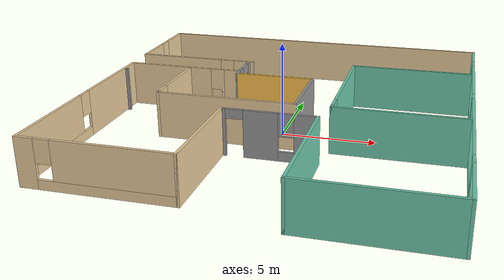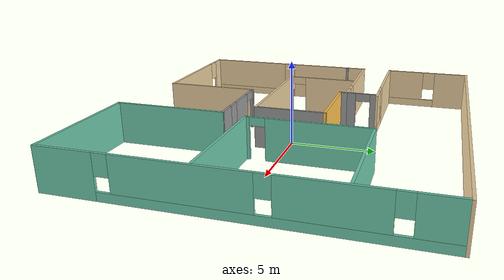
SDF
<?xml version='1.0'?>
<sdf version='1.6'>
  <model name='my_new_world.world'>
    <pose frame=''>-0.097438 0.021608 0 0 -0 0</pose>
    <link name='Wall_10'>
      <pose frame=''>-9.8 7.25 0 0 0 -1.5708</pose>
      <visual name='Wall_10_Visual_0'>
        <pose frame=''>-1.64644 0 1.25 0 -0 0</pose>
        <geometry>
          <box>
            <size>2.20712 0.15 2.5</size>
          </box>
        </geometry>
        <material>
          <script>
            <uri>file://media/materials/scripts/gazebo.material</uri>
            <name>Gazebo/Grey</name>
          </script>
          <ambient>0.921569 0.807843 0.615686 1</ambient>
        </material>
        <meta>
          <layer>0</layer>
        </meta>
      </visual>
      <collision name='Wall_10_Collision_0'>
        <geometry>
          <box>
            <size>2.20712 0.15 2.5</size>
          </box>
        </geometry>
        <pose frame=''>-1.64644 0 1.25 0 -0 0</pose>
      </collision>
      <visual name='Wall_10_Visual_1'>
        <pose frame=''>1.10356 0 0.25 0 -0 0</pose>
        <geometry>
          <box>
            <size>3.29288 0.15 0.5</size>
          </box>
        </geometry>
        <material>
          <script>
            <uri>file://media/materials/scripts/gazebo.material</uri>
            <name>Gazebo/Grey</name>
          </script>
          <ambient>0.921569 0.807843 0.615686 1</ambient>
        </material>
        <meta>
          <layer>0</layer>
        </meta>
      </visual>
      <collision name='Wall_10_Collision_1'>
        <geometry>
          <box>
            <size>3.29288 0.15 0.5</size>
          </box>
        </geometry>
        <pose frame=''>1.10356 0 0.25 0 -0 0</pose>
      </collision>
      <visual name='Wall_10_Visual_2'>
        <pose frame=''>1.50356 0 1.5 0 -0 0</pose>
        <geometry>
          <box>
            <size>2.49288 0.15 2</size>
          </box>
        </geometry>
        <material>
          <script>
            <uri>file://media/materials/scripts/gazebo.material</uri>
            <name>Gazebo/Grey</name>
          </script>
          <ambient>0.921569 0.807843 0.615686 1</ambient>
        </material>
        <meta>
          <layer>0</layer>
        </meta>
      </visual>
      <collision name='Wall_10_Collision_2'>
        <geometry>
          <box>
            <size>2.49288 0.15 2</size>
          </box>
        </geometry>
        <pose frame=''>1.50356 0 1.5 0 -0 0</pose>
      </collision>
      <visual name='Wall_10_Visual_3'>
        <pose frame=''>-0.14288 0 1.9 0 -0 0</pose>
        <geometry>
          <box>
            <size>0.8 0.15 1.2</size>
          </box>
        </geometry>
        <material>
          <script>
            <uri>file://media/materials/scripts/gazebo.material</uri>
            <name>Gazebo/Grey</name>
          </script>
          <ambient>0.921569 0.807843 0.615686 1</ambient>
        </material>
        <meta>
          <layer>0</layer>
        </meta>
      </visual>
      <collision name='Wall_10_Collision_3'>
        <geometry>
          <box>
            <size>0.8 0.15 1.2</size>
          </box>
        </geometry>
        <pose frame=''>-0.14288 0 1.9 0 -0 0</pose>
      </collision>
    </link>
    <link name='Wall_11'>
      <pose frame=''>-6.375 4.575 0 0 -0 0</pose>
      <visual name='Wall_11_Visual_0'>
        <pose frame=''>-1.0089 0 1.25 0 -0 0</pose>
        <geometry>
          <box>
            <size>4.9822 0.15 2.5</size>
          </box>
        </geometry>
        <material>
          <script>
            <uri>file://media/materials/scripts/gazebo.material</uri>
            <name>Gazebo/Grey</name>
          </script>
          <ambient>0.921569 0.807843 0.615686 1</ambient>
        </material>
        <meta>
          <layer>0</layer>
        </meta>
      </visual>
      <collision name='Wall_11_Collision_0'>
        <geometry>
          <box>
            <size>4.9822 0.15 2.5</size>
          </box>
        </geometry>
        <pose frame=''>-1.0089 0 1.25 0 -0 0</pose>
      </collision>
      <visual name='Wall_11_Visual_1'>
        <pose frame=''>2.4911 0 0.25 0 -0 0</pose>
        <geometry>
          <box>
            <size>2.0178 0.15 0.5</size>
          </box>
        </geometry>
        <material>
          <script>
            <uri>file://media/materials/scripts/gazebo.material</uri>
            <name>Gazebo/Grey</name>
          </script>
          <ambient>0.921569 0.807843 0.615686 1</ambient>
        </material>
        <meta>
          <layer>0</layer>
        </meta>
      </visual>
      <collision name='Wall_11_Collision_1'>
        <geometry>
          <box>
            <size>2.0178 0.15 0.5</size>
          </box>
        </geometry>
        <pose frame=''>2.4911 0 0.25 0 -0 0</pose>
      </collision>
      <visual name='Wall_11_Visual_2'>
        <pose frame=''>2.8911 0 1.5 0 -0 0</pose>
        <geometry>
          <box>
            <size>1.2178 0.15 2</size>
          </box>
        </geometry>
        <material>
          <script>
            <uri>file://media/materials/scripts/gazebo.material</uri>
            <name>Gazebo/Grey</name>
          </script>
          <ambient>0.921569 0.807843 0.615686 1</ambient>
        </material>
        <meta>
          <layer>0</layer>
        </meta>
      </visual>
      <collision name='Wall_11_Collision_2'>
        <geometry>
          <box>
            <size>1.2178 0.15 2</size>
          </box>
        </geometry>
        <pose frame=''>2.8911 0 1.5 0 -0 0</pose>
      </collision>
      <visual name='Wall_11_Visual_3'>
        <pose frame=''>1.8822 0 1.9 0 -0 0</pose>
        <geometry>
          <box>
            <size>0.8 0.15 1.2</size>
          </box>
        </geometry>
        <material>
          <script>
            <uri>file://media/materials/scripts/gazebo.material</uri>
            <name>Gazebo/Grey</name>
          </script>
          <ambient>0.921569 0.807843 0.615686 1</ambient>
        </material>
        <meta>
          <layer>0</layer>
        </meta>
      </visual>
      <collision name='Wall_11_Collision_3'>
        <geometry>
          <box>
            <size>0.8 0.15 1.2</size>
          </box>
        </geometry>
        <pose frame=''>1.8822 0 1.9 0 -0 0</pose>
      </collision>
    </link>
    <link name='Wall_14'>
      <collision name='Wall_14_Collision'>
        <geometry>
          <box>
            <size>0.15 0.15 2.5</size>
          </box>
        </geometry>
        <pose frame=''>0 0 1.25 0 -0 0</pose>
      </collision>
      <visual name='Wall_14_Visual'>
        <pose frame=''>0 0 1.25 0 -0 0</pose>
        <geometry>
          <box>
            <size>0.15 0.15 2.5</size>
          </box>
        </geometry>
        <material>
          <script>
            <uri>file://media/materials/scripts/gazebo.material</uri>
            <name>Gazebo/Grey</name>
          </script>
          <ambient>1 1 1 1</ambient>
        </material>
        <meta>
          <layer>0</layer>
        </meta>
      </visual>
      <pose frame=''>-9.55 1.475 0 0 -0 0</pose>
    </link>
    <link name='Wall_19'>
      <pose frame=''>-6.45 2.675 0 0 -0 0</pose>
      <visual name='Wall_19_Visual_0'>
        <pose frame=''>-0.885637 0 1.25 0 -0 0</pose>
        <geometry>
          <box>
            <size>4.97873 0.15 2.5</size>
          </box>
        </geometry>
        <material>
          <script>
            <uri>file://media/materials/scripts/gazebo.material</uri>
            <name>Gazebo/Grey</name>
          </script>
          <ambient>0.921569 0.807843 0.615686 1</ambient>
        </material>
        <meta>
          <layer>0</layer>
        </meta>
      </visual>
      <collision name='Wall_19_Collision_0'>
        <geometry>
          <box>
            <size>4.97873 0.15 2.5</size>
          </box>
        </geometry>
        <pose frame=''>-0.885637 0 1.25 0 -0 0</pose>
      </collision>
      <visual name='Wall_19_Visual_1'>
        <pose frame=''>2.48936 0 0.25 0 -0 0</pose>
        <geometry>
          <box>
            <size>1.77127 0.15 0.5</size>
          </box>
        </geometry>
        <material>
          <script>
            <uri>file://media/materials/scripts/gazebo.material</uri>
            <name>Gazebo/Grey</name>
          </script>
          <ambient>0.921569 0.807843 0.615686 1</ambient>
        </material>
        <meta>
          <layer>0</layer>
        </meta>
      </visual>
      <collision name='Wall_19_Collision_1'>
        <geometry>
          <box>
            <size>1.77127 0.15 0.5</size>
          </box>
        </geometry>
        <pose frame=''>2.48936 0 0.25 0 -0 0</pose>
      </collision>
      <visual name='Wall_19_Visual_2'>
        <pose frame=''>2.88936 0 1.5 0 -0 0</pose>
        <geometry>
          <box>
            <size>0.971274 0.15 2</size>
          </box>
        </geometry>
        <material>
          <script>
            <uri>file://media/materials/scripts/gazebo.material</uri>
            <name>Gazebo/Grey</name>
          </script>
          <ambient>0.921569 0.807843 0.615686 1</ambient>
        </material>
        <meta>
          <layer>0</layer>
        </meta>
      </visual>
      <collision name='Wall_19_Collision_2'>
        <geometry>
          <box>
            <size>0.971274 0.15 2</size>
          </box>
        </geometry>
        <pose frame=''>2.88936 0 1.5 0 -0 0</pose>
      </collision>
      <visual name='Wall_19_Visual_3'>
        <pose frame=''>2.00373 0 1.9 0 -0 0</pose>
        <geometry>
          <box>
            <size>0.8 0.15 1.2</size>
          </box>
        </geometry>
        <material>
          <script>
            <uri>file://media/materials/scripts/gazebo.material</uri>
            <name>Gazebo/Grey</name>
          </script>
          <ambient>0.921569 0.807843 0.615686 1</ambient>
        </material>
        <meta>
          <layer>0</layer>
        </meta>
      </visual>
      <collision name='Wall_19_Collision_3'>
        <geometry>
          <box>
            <size>0.8 0.15 1.2</size>
          </box>
        </geometry>
        <pose frame=''>2.00373 0 1.9 0 -0 0</pose>
      </collision>
    </link>
    <link name='Wall_2'>
      <pose frame=''>-9.75 -3.125 0 0 0 -1.5708</pose>
      <visual name='Wall_2_Visual_0'>
        <pose frame=''>-3.18576 0 1.25 0 -0 0</pose>
        <geometry>
          <box>
            <size>5.37848 0.15 2.5</size>
          </box>
        </geometry>
        <material>
          <script>
            <uri>file://media/materials/scripts/gazebo.material</uri>
            <name>Gazebo/Grey</name>
          </script>
          <ambient>0.921569 0.807843 0.615686 1</ambient>
        </material>
        <meta>
          <layer>0</layer>
        </meta>
      </visual>
      <collision name='Wall_2_Collision_0'>
        <geometry>
          <box>
            <size>5.37848 0.15 2.5</size>
          </box>
        </geometry>
        <pose frame=''>-3.18576 0 1.25 0 -0 0</pose>
      </collision>
      <visual name='Wall_2_Visual_1'>
        <pose frame=''>2.68924 0 0.25 0 -0 0</pose>
        <geometry>
          <box>
            <size>6.37152 0.15 0.5</size>
          </box>
        </geometry>
        <material>
          <script>
            <uri>file://media/materials/scripts/gazebo.material</uri>
            <name>Gazebo/Grey</name>
          </script>
          <ambient>0.921569 0.807843 0.615686 1</ambient>
        </material>
        <meta>
          <layer>0</layer>
        </meta>
      </visual>
      <collision name='Wall_2_Collision_1'>
        <geometry>
          <box>
            <size>6.37152 0.15 0.5</size>
          </box>
        </geometry>
        <pose frame=''>2.68924 0 0.25 0 -0 0</pose>
      </collision>
      <visual name='Wall_2_Visual_2'>
        <pose frame=''>3.08924 0 1.5 0 -0 0</pose>
        <geometry>
          <box>
            <size>5.57152 0.15 2</size>
          </box>
        </geometry>
        <material>
          <script>
            <uri>file://media/materials/scripts/gazebo.material</uri>
            <name>Gazebo/Grey</name>
          </script>
          <ambient>0.921569 0.807843 0.615686 1</ambient>
        </material>
        <meta>
          <layer>0</layer>
        </meta>
      </visual>
      <collision name='Wall_2_Collision_2'>
        <geometry>
          <box>
            <size>5.57152 0.15 2</size>
          </box>
        </geometry>
        <pose frame=''>3.08924 0 1.5 0 -0 0</pose>
      </collision>
      <visual name='Wall_2_Visual_3'>
        <pose frame=''>-0.096524 0 1.9 0 -0 0</pose>
        <geometry>
          <box>
            <size>0.8 0.15 1.2</size>
          </box>
        </geometry>
        <material>
          <script>
            <uri>file://media/materials/scripts/gazebo.material</uri>
            <name>Gazebo/Grey</name>
          </script>
          <ambient>0.921569 0.807843 0.615686 1</ambient>
        </material>
        <meta>
          <layer>0</layer>
        </meta>
      </visual>
      <collision name='Wall_2_Collision_3'>
        <geometry>
          <box>
            <size>0.8 0.15 1.2</size>
          </box>
        </geometry>
        <pose frame=''>-0.096524 0 1.9 0 -0 0</pose>
      </collision>
    </link>
    <link name='Wall_20'>
      <pose frame=''>-3.15 3.6 0 0 -0 1.5708</pose>
      <visual name='Wall_20_Visual_0'>
        <pose frame=''>-0.689516 0 1.25 0 -0 0</pose>
        <geometry>
          <box>
            <size>0.620967 0.15 2.5</size>
          </box>
        </geometry>
        <material>
          <script>
            <uri>file://media/materials/scripts/gazebo.material</uri>
            <name>Gazebo/Grey</name>
          </script>
          <ambient>1 1 1 1</ambient>
        </material>
        <meta>
          <layer>0</layer>
        </meta>
      </visual>
      <collision name='Wall_20_Collision_0'>
        <geometry>
          <box>
            <size>0.620967 0.15 2.5</size>
          </box>
        </geometry>
        <pose frame=''>-0.689516 0 1.25 0 -0 0</pose>
      </collision>
      <visual name='Wall_20_Visual_1'>
        <pose frame=''>0.760484 0 1.25 0 -0 0</pose>
        <geometry>
          <box>
            <size>0.479033 0.15 2.5</size>
          </box>
        </geometry>
        <material>
          <script>
            <uri>file://media/materials/scripts/gazebo.material</uri>
            <name>Gazebo/Grey</name>
          </script>
          <ambient>1 1 1 1</ambient>
        </material>
        <meta>
          <layer>0</layer>
        </meta>
      </visual>
      <collision name='Wall_20_Collision_1'>
        <geometry>
          <box>
            <size>0.479033 0.15 2.5</size>
          </box>
        </geometry>
        <pose frame=''>0.760484 0 1.25 0 -0 0</pose>
      </collision>
      <visual name='Wall_20_Visual_2'>
        <pose frame=''>0.070967 0 2.25 0 -0 0</pose>
        <geometry>
          <box>
            <size>0.9 0.15 0.5</size>
          </box>
        </geometry>
        <material>
          <script>
            <uri>file://media/materials/scripts/gazebo.material</uri>
            <name>Gazebo/Grey</name>
          </script>
          <ambient>1 1 1 1</ambient>
        </material>
        <meta>
          <layer>0</layer>
        </meta>
      </visual>
      <collision name='Wall_20_Collision_2'>
        <geometry>
          <box>
            <size>0.9 0.15 0.5</size>
          </box>
        </geometry>
        <pose frame=''>0.070967 0 2.25 0 -0 0</pose>
      </collision>
    </link>
    <link name='Wall_22'>
      <collision name='Wall_22_Collision'>
        <geometry>
          <box>
            <size>7.5 0.15 2.5</size>
          </box>
        </geometry>
        <pose frame=''>0 0 1.25 0 -0 0</pose>
      </collision>
      <visual name='Wall_22_Visual'>
        <pose frame=''>0 0 1.25 0 -0 0</pose>
        <geometry>
          <box>
            <size>7.5 0.15 2.5</size>
          </box>
        </geometry>
        <material>
          <script>
            <uri>file://media/materials/scripts/gazebo.material</uri>
            <name>Gazebo/Grey</name>
          </script>
          <ambient>0.921569 0.807843 0.615686 1</ambient>
        </material>
        <meta>
          <layer>0</layer>
        </meta>
      </visual>
      <pose frame=''>-2.44536 -1.86538 0 0 -0 3.14159</pose>
    </link>
    <link name='Wall_23'>
      <pose frame=''>-6.12036 0.309622 0 0 -0 1.5708</pose>
      <visual name='Wall_23_Visual_0'>
        <pose frame=''>-2.1351 0 1.25 0 -0 0</pose>
        <geometry>
          <box>
            <size>0.229811 0.15 2.5</size>
          </box>
        </geometry>
        <material>
          <script>
            <uri>file://media/materials/scripts/gazebo.material</uri>
            <name>Gazebo/Grey</name>
          </script>
          <ambient>0.921569 0.807843 0.615686 1</ambient>
        </material>
        <meta>
          <layer>0</layer>
        </meta>
      </visual>
      <collision name='Wall_23_Collision_0'>
        <geometry>
          <box>
            <size>0.229811 0.15 2.5</size>
          </box>
        </geometry>
        <pose frame=''>-2.1351 0 1.25 0 -0 0</pose>
      </collision>
      <visual name='Wall_23_Visual_1'>
        <pose frame=''>0.564905 0 1.25 0 -0 0</pose>
        <geometry>
          <box>
            <size>3.37019 0.15 2.5</size>
          </box>
        </geometry>
        <material>
          <script>
            <uri>file://media/materials/scripts/gazebo.material</uri>
            <name>Gazebo/Grey</name>
          </script>
          <ambient>0.921569 0.807843 0.615686 1</ambient>
        </material>
        <meta>
          <layer>0</layer>
        </meta>
      </visual>
      <collision name='Wall_23_Collision_1'>
        <geometry>
          <box>
            <size>3.37019 0.15 2.5</size>
          </box>
        </geometry>
        <pose frame=''>0.564905 0 1.25 0 -0 0</pose>
      </collision>
      <visual name='Wall_23_Visual_2'>
        <pose frame=''>-1.57019 0 2.25 0 -0 0</pose>
        <geometry>
          <box>
            <size>0.9 0.15 0.5</size>
          </box>
        </geometry>
        <material>
          <script>
            <uri>file://media/materials/scripts/gazebo.material</uri>
            <name>Gazebo/Grey</name>
          </script>
          <ambient>0.921569 0.807843 0.615686 1</ambient>
        </material>
        <meta>
          <layer>0</layer>
        </meta>
      </visual>
      <collision name='Wall_23_Collision_2'>
        <geometry>
          <box>
            <size>0.9 0.15 0.5</size>
          </box>
        </geometry>
        <pose frame=''>-1.57019 0 2.25 0 -0 0</pose>
      </collision>
    </link>
    <link name='Wall_25'>
      <collision name='Wall_25_Collision'>
        <geometry>
          <box>
            <size>4.25 0.15 2.5</size>
          </box>
        </geometry>
        <pose frame=''>0 0 1.25 0 -0 0</pose>
      </collision>
      <visual name='Wall_25_Visual'>
        <pose frame=''>0 0 1.25 0 -0 0</pose>
        <geometry>
          <box>
            <size>4.25 0.15 2.5</size>
          </box>
        </geometry>
        <material>
          <script>
            <uri>file://media/materials/scripts/gazebo.material</uri>
            <name>Gazebo/Grey</name>
          </script>
          <ambient>1 1 1 1</ambient>
        </material>
        <meta>
          <layer>0</layer>
        </meta>
      </visual>
      <pose frame=''>1.22964 0.184622 0 0 -0 1.5708</pose>
    </link>
    <link name='Wall_27'>
      <collision name='Wall_27_Collision'>
        <geometry>
          <box>
            <size>4.5 0.15 2.5</size>
          </box>
        </geometry>
        <pose frame=''>0 0 1.25 0 -0 0</pose>
      </collision>
      <visual name='Wall_27_Visual'>
        <pose frame=''>0 0 1.25 0 -0 0</pose>
        <geometry>
          <box>
            <size>4.5 0.15 2.5</size>
          </box>
        </geometry>
        <material>
          <script>
            <uri>file://media/materials/scripts/gazebo.material</uri>
            <name>Gazebo/Grey</name>
          </script>
          <ambient>1 0.764706 0.305882 1</ambient>
        </material>
        <meta>
          <layer>0</layer>
        </meta>
      </visual>
      <pose frame=''>-0.945357 2.23462 0 0 -0 3.14159</pose>
    </link>
    <link name='Wall_28'>
      <collision name='Wall_28_Collision'>
        <geometry>
          <box>
            <size>0.591375 0.15 2.5</size>
          </box>
        </geometry>
        <pose frame=''>0 0 1.25 0 -0 0</pose>
      </collision>
      <visual name='Wall_28_Visual'>
        <pose frame=''>0 0 1.25 0 -0 0</pose>
        <geometry>
          <box>
            <size>0.591375 0.15 2.5</size>
          </box>
        </geometry>
        <material>
          <script>
            <uri>file://media/materials/scripts/gazebo.material</uri>
            <name>Gazebo/Grey</name>
          </script>
          <ambient>1 1 1 1</ambient>
        </material>
        <meta>
          <layer>0</layer>
        </meta>
      </visual>
      <pose frame=''>-3.13518 2.45481 0 0 -0 1.63801</pose>
    </link>
    <link name='Wall_3'>
      <pose frame=''>-5.95 -8.925 0 0 -0 0</pose>
      <visual name='Wall_3_Visual_0'>
        <pose frame=''>-3.38617 0 1.25 0 -0 0</pose>
        <geometry>
          <box>
            <size>0.97767 0.15 2.5</size>
          </box>
        </geometry>
        <material>
          <script>
            <uri>file://media/materials/scripts/gazebo.material</uri>
            <name>Gazebo/Grey</name>
          </script>
          <ambient>0.921569 0.807843 0.615686 1</ambient>
        </material>
        <meta>
          <layer>0</layer>
        </meta>
      </visual>
      <collision name='Wall_3_Collision_0'>
        <geometry>
          <box>
            <size>0.97767 0.15 2.5</size>
          </box>
        </geometry>
        <pose frame=''>-3.38617 0 1.25 0 -0 0</pose>
      </collision>
      <visual name='Wall_3_Visual_1'>
        <pose frame=''>0.488835 0 0.25 0 -0 0</pose>
        <geometry>
          <box>
            <size>6.77233 0.15 0.5</size>
          </box>
        </geometry>
        <material>
          <script>
            <uri>file://media/materials/scripts/gazebo.material</uri>
            <name>Gazebo/Grey</name>
          </script>
          <ambient>0.921569 0.807843 0.615686 1</ambient>
        </material>
        <meta>
          <layer>0</layer>
        </meta>
      </visual>
      <collision name='Wall_3_Collision_1'>
        <geometry>
          <box>
            <size>6.77233 0.15 0.5</size>
          </box>
        </geometry>
        <pose frame=''>0.488835 0 0.25 0 -0 0</pose>
      </collision>
      <visual name='Wall_3_Visual_2'>
        <pose frame=''>0.888835 0 1.5 0 -0 0</pose>
        <geometry>
          <box>
            <size>5.97233 0.15 2</size>
          </box>
        </geometry>
        <material>
          <script>
            <uri>file://media/materials/scripts/gazebo.material</uri>
            <name>Gazebo/Grey</name>
          </script>
          <ambient>0.921569 0.807843 0.615686 1</ambient>
        </material>
        <meta>
          <layer>0</layer>
        </meta>
      </visual>
      <collision name='Wall_3_Collision_2'>
        <geometry>
          <box>
            <size>5.97233 0.15 2</size>
          </box>
        </geometry>
        <pose frame=''>0.888835 0 1.5 0 -0 0</pose>
      </collision>
      <visual name='Wall_3_Visual_3'>
        <pose frame=''>-2.49733 0 1.9 0 -0 0</pose>
        <geometry>
          <box>
            <size>0.8 0.15 1.2</size>
          </box>
        </geometry>
        <material>
          <script>
            <uri>file://media/materials/scripts/gazebo.material</uri>
            <name>Gazebo/Grey</name>
          </script>
          <ambient>0.921569 0.807843 0.615686 1</ambient>
        </material>
        <meta>
          <layer>0</layer>
        </meta>
      </visual>
      <collision name='Wall_3_Collision_3'>
        <geometry>
          <box>
            <size>0.8 0.15 1.2</size>
          </box>
        </geometry>
        <pose frame=''>-2.49733 0 1.9 0 -0 0</pose>
      </collision>
    </link>
    <link name='Wall_30'>
      <pose frame=''>3.04408 1.73115 0 0 -0 1.5708</pose>
      <visual name='Wall_30_Visual_0'>
        <pose frame=''>-3.46357 0 1.25 0 -0 0</pose>
        <geometry>
          <box>
            <size>0.322859 0.15 2.5</size>
          </box>
        </geometry>
        <material>
          <script>
            <uri>file://media/materials/scripts/gazebo.material</uri>
            <name>Gazebo/Grey</name>
          </script>
          <ambient>0.435294 0.796078 0.67451 1</ambient>
        </material>
        <meta>
          <layer>0</layer>
        </meta>
      </visual>
      <collision name='Wall_30_Collision_0'>
        <geometry>
          <box>
            <size>0.322859 0.15 2.5</size>
          </box>
        </geometry>
        <pose frame=''>-3.46357 0 1.25 0 -0 0</pose>
      </collision>
      <visual name='Wall_30_Visual_1'>
        <pose frame=''>0.611429 0 1.25 0 -0 0</pose>
        <geometry>
          <box>
            <size>6.02714 0.15 2.5</size>
          </box>
        </geometry>
        <material>
          <script>
            <uri>file://media/materials/scripts/gazebo.material</uri>
            <name>Gazebo/Grey</name>
          </script>
          <ambient>0.435294 0.796078 0.67451 1</ambient>
        </material>
        <meta>
          <layer>0</layer>
        </meta>
      </visual>
      <collision name='Wall_30_Collision_1'>
        <geometry>
          <box>
            <size>6.02714 0.15 2.5</size>
          </box>
        </geometry>
        <pose frame=''>0.611429 0 1.25 0 -0 0</pose>
      </collision>
      <visual name='Wall_30_Visual_2'>
        <pose frame=''>-2.85214 0 2.25 0 -0 0</pose>
        <geometry>
          <box>
            <size>0.9 0.15 0.5</size>
          </box>
        </geometry>
        <material>
          <script>
            <uri>file://media/materials/scripts/gazebo.material</uri>
            <name>Gazebo/Grey</name>
          </script>
          <ambient>0.435294 0.796078 0.67451 1</ambient>
        </material>
        <meta>
          <layer>0</layer>
        </meta>
      </visual>
      <collision name='Wall_30_Collision_2'>
        <geometry>
          <box>
            <size>0.9 0.15 0.5</size>
          </box>
        </geometry>
        <pose frame=''>-2.85214 0 2.25 0 -0 0</pose>
      </collision>
    </link>
    <link name='Wall_31'>
      <collision name='Wall_31_Collision'>
        <geometry>
          <box>
            <size>6.75 0.15 2.5</size>
          </box>
        </geometry>
        <pose frame=''>0 0 1.25 0 -0 0</pose>
      </collision>
      <visual name='Wall_31_Visual'>
        <pose frame=''>0 0 1.25 0 -0 0</pose>
        <geometry>
          <box>
            <size>6.75 0.15 2.5</size>
          </box>
        </geometry>
        <material>
          <script>
            <uri>file://media/materials/scripts/gazebo.material</uri>
            <name>Gazebo/Grey</name>
          </script>
          <ambient>0.435294 0.796078 0.67451 1</ambient>
        </material>
        <meta>
          <layer>0</layer>
        </meta>
      </visual>
      <pose frame=''>6.34408 5.28115 0 0 -0 0</pose>
    </link>
    <link name='Wall_33'>
      <collision name='Wall_33_Collision'>
        <geometry>
          <box>
            <size>6.75 0.15 2.5</size>
          </box>
        </geometry>
        <pose frame=''>0 0 1.25 0 -0 0</pose>
      </collision>
      <visual name='Wall_33_Visual'>
        <pose frame=''>0 0 1.25 0 -0 0</pose>
        <geometry>
          <box>
            <size>6.75 0.15 2.5</size>
          </box>
        </geometry>
        <material>
          <script>
            <uri>file://media/materials/scripts/gazebo.material</uri>
            <name>Gazebo/Grey</name>
          </script>
          <ambient>0.435294 0.796078 0.67451 1</ambient>
        </material>
        <meta>
          <layer>0</layer>
        </meta>
      </visual>
      <pose frame=''>6.34408 -1.81885 0 0 -0 0</pose>
    </link>
    <link name='Wall_4'>
      <collision name='Wall_4_Collision'>
        <geometry>
          <box>
            <size>5.75 0.15 2.5</size>
          </box>
        </geometry>
        <pose frame=''>0 0 1.25 0 -0 0</pose>
      </collision>
      <visual name='Wall_4_Visual'>
        <pose frame=''>0 0 1.25 0 -0 0</pose>
        <geometry>
          <box>
            <size>5.75 0.15 2.5</size>
          </box>
        </geometry>
        <material>
          <script>
            <uri>file://media/materials/scripts/gazebo.material</uri>
            <name>Gazebo/Grey</name>
          </script>
          <ambient>0.921569 0.807843 0.615686 1</ambient>
        </material>
        <meta>
          <layer>0</layer>
        </meta>
      </visual>
      <pose frame=''>-2.15 -6.125 0 0 -0 1.5708</pose>
    </link>
    <link name='Wall_5'>
      <pose frame=''>0.275 -3.325 0 0 -0 0</pose>
      <visual name='Wall_5_Visual_0'>
        <pose frame=''>-2.34687 0 1.25 0 -0 0</pose>
        <geometry>
          <box>
            <size>0.306257 0.15 2.5</size>
          </box>
        </geometry>
        <material>
          <script>
            <uri>file://media/materials/scripts/gazebo.material</uri>
            <name>Gazebo/Grey</name>
          </script>
          <ambient>1 1 1 1</ambient>
        </material>
        <meta>
          <layer>0</layer>
        </meta>
      </visual>
      <collision name='Wall_5_Collision_0'>
        <geometry>
          <box>
            <size>0.306257 0.15 2.5</size>
          </box>
        </geometry>
        <pose frame=''>-2.34687 0 1.25 0 -0 0</pose>
      </collision>
      <visual name='Wall_5_Visual_1'>
        <pose frame=''>-0.416074 0 1.25 0 -0 0</pose>
        <geometry>
          <box>
            <size>1.75534 0.15 2.5</size>
          </box>
        </geometry>
        <material>
          <script>
            <uri>file://media/materials/scripts/gazebo.material</uri>
            <name>Gazebo/Grey</name>
          </script>
          <ambient>1 1 1 1</ambient>
        </material>
        <meta>
          <layer>0</layer>
        </meta>
      </visual>
      <collision name='Wall_5_Collision_1'>
        <geometry>
          <box>
            <size>1.75534 0.15 2.5</size>
          </box>
        </geometry>
        <pose frame=''>-0.416074 0 1.25 0 -0 0</pose>
      </collision>
      <visual name='Wall_5_Visual_2'>
        <pose frame=''>1.4808 0 0.25 0 -0 0</pose>
        <geometry>
          <box>
            <size>2.0384 0.15 0.5</size>
          </box>
        </geometry>
        <material>
          <script>
            <uri>file://media/materials/scripts/gazebo.material</uri>
            <name>Gazebo/Grey</name>
          </script>
          <ambient>1 1 1 1</ambient>
        </material>
        <meta>
          <layer>0</layer>
        </meta>
      </visual>
      <collision name='Wall_5_Collision_2'>
        <geometry>
          <box>
            <size>2.0384 0.15 0.5</size>
          </box>
        </geometry>
        <pose frame=''>1.4808 0 0.25 0 -0 0</pose>
      </collision>
      <visual name='Wall_5_Visual_3'>
        <pose frame=''>1.8808 0 1.5 0 -0 0</pose>
        <geometry>
          <box>
            <size>1.2384 0.15 2</size>
          </box>
        </geometry>
        <material>
          <script>
            <uri>file://media/materials/scripts/gazebo.material</uri>
            <name>Gazebo/Grey</name>
          </script>
          <ambient>1 1 1 1</ambient>
        </material>
        <meta>
          <layer>0</layer>
        </meta>
      </visual>
      <collision name='Wall_5_Collision_3'>
        <geometry>
          <box>
            <size>1.2384 0.15 2</size>
          </box>
        </geometry>
        <pose frame=''>1.8808 0 1.5 0 -0 0</pose>
      </collision>
      <visual name='Wall_5_Visual_4'>
        <pose frame=''>0.861596 0 1.9 0 -0 0</pose>
        <geometry>
          <box>
            <size>0.8 0.15 1.2</size>
          </box>
        </geometry>
        <material>
          <script>
            <uri>file://media/materials/scripts/gazebo.material</uri>
            <name>Gazebo/Grey</name>
          </script>
          <ambient>1 1 1 1</ambient>
        </material>
        <meta>
          <layer>0</layer>
        </meta>
      </visual>
      <collision name='Wall_5_Collision_4'>
        <geometry>
          <box>
            <size>0.8 0.15 1.2</size>
          </box>
        </geometry>
        <pose frame=''>0.861596 0 1.9 0 -0 0</pose>
      </collision>
      <visual name='Wall_5_Visual_5'>
        <pose frame=''>-1.74374 0 2.25 0 -0 0</pose>
        <geometry>
          <box>
            <size>0.9 0.15 0.5</size>
          </box>
        </geometry>
        <material>
          <script>
            <uri>file://media/materials/scripts/gazebo.material</uri>
            <name>Gazebo/Grey</name>
          </script>
          <ambient>1 1 1 1</ambient>
        </material>
        <meta>
          <layer>0</layer>
        </meta>
      </visual>
      <collision name='Wall_5_Collision_5'>
        <geometry>
          <box>
            <size>0.9 0.15 0.5</size>
          </box>
        </geometry>
        <pose frame=''>-1.74374 0 2.25 0 -0 0</pose>
      </collision>
    </link>
    <link name='Wall_6'>
      <collision name='Wall_6_Collision'>
        <geometry>
          <box>
            <size>6.75 0.15 2.5</size>
          </box>
        </geometry>
        <pose frame=''>0 0 1.25 0 -0 0</pose>
      </collision>
      <visual name='Wall_6_Visual'>
        <pose frame=''>0 0 1.25 0 -0 0</pose>
        <geometry>
          <box>
            <size>6.75 0.15 2.5</size>
          </box>
        </geometry>
        <material>
          <script>
            <uri>file://media/materials/scripts/gazebo.material</uri>
            <name>Gazebo/Grey</name>
          </script>
          <ambient>0.435294 0.796078 0.67451 1</ambient>
        </material>
        <meta>
          <layer>0</layer>
        </meta>
      </visual>
      <pose frame=''>2.7 -6.625 0 0 0 -1.5708</pose>
    </link>
    <link name='Wall_7'>
      <collision name='Wall_7_Collision'>
        <geometry>
          <box>
            <size>7.25 0.15 2.5</size>
          </box>
        </geometry>
        <pose frame=''>0 0 1.25 0 -0 0</pose>
      </collision>
      <visual name='Wall_7_Visual'>
        <pose frame=''>0 0 1.25 0 -0 0</pose>
        <geometry>
          <box>
            <size>7.25 0.15 2.5</size>
          </box>
        </geometry>
        <material>
          <script>
            <uri>file://media/materials/scripts/gazebo.material</uri>
            <name>Gazebo/Grey</name>
          </script>
          <ambient>0.435294 0.796078 0.67451 1</ambient>
        </material>
        <meta>
          <layer>0</layer>
        </meta>
      </visual>
      <pose frame=''>6.25 -9.925 0 0 -0 0</pose>
    </link>
    <link name='Wall_8'>
      <pose frame=''>9.8 0 0 0 -0 1.5708</pose>
      <visual name='Wall_8_Visual_0'>
        <pose frame=''>-8.36584 0 1.25 0 -0 0</pose>
        <geometry>
          <box>
            <size>3.26833 0.15 2.5</size>
          </box>
        </geometry>
        <material>
          <script>
            <uri>file://media/materials/scripts/gazebo.material</uri>
            <name>Gazebo/Grey</name>
          </script>
          <ambient>0.435294 0.796078 0.67451 1</ambient>
        </material>
        <meta>
          <layer>0</layer>
        </meta>
      </visual>
      <collision name='Wall_8_Collision_0'>
        <geometry>
          <box>
            <size>3.26833 0.15 2.5</size>
          </box>
        </geometry>
        <pose frame=''>-8.36584 0 1.25 0 -0 0</pose>
      </collision>
      <visual name='Wall_8_Visual_1'>
        <pose frame=''>1.63416 0 0.25 0 -0 0</pose>
        <geometry>
          <box>
            <size>16.7317 0.15 0.5</size>
          </box>
        </geometry>
        <material>
          <script>
            <uri>file://media/materials/scripts/gazebo.material</uri>
            <name>Gazebo/Grey</name>
          </script>
          <ambient>0.435294 0.796078 0.67451 1</ambient>
        </material>
        <meta>
          <layer>0</layer>
        </meta>
      </visual>
      <collision name='Wall_8_Collision_1'>
        <geometry>
          <box>
            <size>16.7317 0.15 0.5</size>
          </box>
        </geometry>
        <pose frame=''>1.63416 0 0.25 0 -0 0</pose>
      </collision>
      <visual name='Wall_8_Visual_2'>
        <pose frame=''>-2.4004 0 1.5 0 -0 0</pose>
        <geometry>
          <box>
            <size>7.06254 0.15 2</size>
          </box>
        </geometry>
        <material>
          <script>
            <uri>file://media/materials/scripts/gazebo.material</uri>
            <name>Gazebo/Grey</name>
          </script>
          <ambient>0.435294 0.796078 0.67451 1</ambient>
        </material>
        <meta>
          <layer>0</layer>
        </meta>
      </visual>
      <collision name='Wall_8_Collision_2'>
        <geometry>
          <box>
            <size>7.06254 0.15 2</size>
          </box>
        </geometry>
        <pose frame=''>-2.4004 0 1.5 0 -0 0</pose>
      </collision>
      <visual name='Wall_8_Visual_3'>
        <pose frame=''>4.48514 0 1.5 0 -0 0</pose>
        <geometry>
          <box>
            <size>5.10854 0.15 2</size>
          </box>
        </geometry>
        <material>
          <script>
            <uri>file://media/materials/scripts/gazebo.material</uri>
            <name>Gazebo/Grey</name>
          </script>
          <ambient>0.435294 0.796078 0.67451 1</ambient>
        </material>
        <meta>
          <layer>0</layer>
        </meta>
      </visual>
      <collision name='Wall_8_Collision_3'>
        <geometry>
          <box>
            <size>5.10854 0.15 2</size>
          </box>
        </geometry>
        <pose frame=''>4.48514 0 1.5 0 -0 0</pose>
      </collision>
      <visual name='Wall_8_Visual_4'>
        <pose frame=''>8.9197 0 1.5 0 -0 0</pose>
        <geometry>
          <box>
            <size>2.16059 0.15 2</size>
          </box>
        </geometry>
        <material>
          <script>
            <uri>file://media/materials/scripts/gazebo.material</uri>
            <name>Gazebo/Grey</name>
          </script>
          <ambient>0.435294 0.796078 0.67451 1</ambient>
        </material>
        <meta>
          <layer>0</layer>
        </meta>
      </visual>
      <collision name='Wall_8_Collision_4'>
        <geometry>
          <box>
            <size>2.16059 0.15 2</size>
          </box>
        </geometry>
        <pose frame=''>8.9197 0 1.5 0 -0 0</pose>
      </collision>
      <visual name='Wall_8_Visual_5'>
        <pose frame=''>-6.33167 0 1.9 0 -0 0</pose>
        <geometry>
          <box>
            <size>0.8 0.15 1.2</size>
          </box>
        </geometry>
        <material>
          <script>
            <uri>file://media/materials/scripts/gazebo.material</uri>
            <name>Gazebo/Grey</name>
          </script>
          <ambient>0.435294 0.796078 0.67451 1</ambient>
        </material>
        <meta>
          <layer>0</layer>
        </meta>
      </visual>
      <collision name='Wall_8_Collision_5'>
        <geometry>
          <box>
            <size>0.8 0.15 1.2</size>
          </box>
        </geometry>
        <pose frame=''>-6.33167 0 1.9 0 -0 0</pose>
      </collision>
      <visual name='Wall_8_Visual_6'>
        <pose frame=''>1.53087 0 1.9 0 -0 0</pose>
        <geometry>
          <box>
            <size>0.8 0.15 1.2</size>
          </box>
        </geometry>
        <material>
          <script>
            <uri>file://media/materials/scripts/gazebo.material</uri>
            <name>Gazebo/Grey</name>
          </script>
          <ambient>0.435294 0.796078 0.67451 1</ambient>
        </material>
        <meta>
          <layer>0</layer>
        </meta>
      </visual>
      <collision name='Wall_8_Collision_6'>
        <geometry>
          <box>
            <size>0.8 0.15 1.2</size>
          </box>
        </geometry>
        <pose frame=''>1.53087 0 1.9 0 -0 0</pose>
      </collision>
      <visual name='Wall_8_Visual_7'>
        <pose frame=''>7.4394 0 1.9 0 -0 0</pose>
        <geometry>
          <box>
            <size>0.8 0.15 1.2</size>
          </box>
        </geometry>
        <material>
          <script>
            <uri>file://media/materials/scripts/gazebo.material</uri>
            <name>Gazebo/Grey</name>
          </script>
          <ambient>0.435294 0.796078 0.67451 1</ambient>
        </material>
        <meta>
          <layer>0</layer>
        </meta>
      </visual>
      <collision name='Wall_8_Collision_7'>
        <geometry>
          <box>
            <size>0.8 0.15 1.2</size>
          </box>
        </geometry>
        <pose frame=''>7.4394 0 1.9 0 -0 0</pose>
      </collision>
    </link>
    <link name='Wall_9'>
      <collision name='Wall_9_Collision'>
        <geometry>
          <box>
            <size>19.75 0.15 2.5</size>
          </box>
        </geometry>
        <pose frame=''>0 0 1.25 0 -0 0</pose>
      </collision>
      <visual name='Wall_9_Visual'>
        <pose frame=''>0 0 1.25 0 -0 0</pose>
        <geometry>
          <box>
            <size>19.75 0.15 2.5</size>
          </box>
        </geometry>
        <material>
          <script>
            <uri>file://media/materials/scripts/gazebo.material</uri>
            <name>Gazebo/Grey</name>
          </script>
          <ambient>0.921569 0.807843 0.615686 1</ambient>
        </material>
        <meta>
          <layer>0</layer>
        </meta>
      </visual>
      <pose frame=''>0 9.925 0 0 -0 3.14159</pose>
    </link>
    <static>1</static>
  </model>
</sdf>
